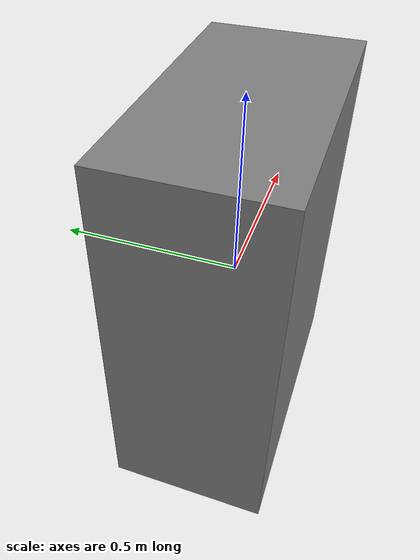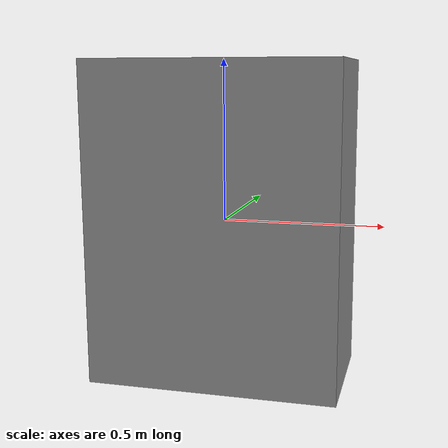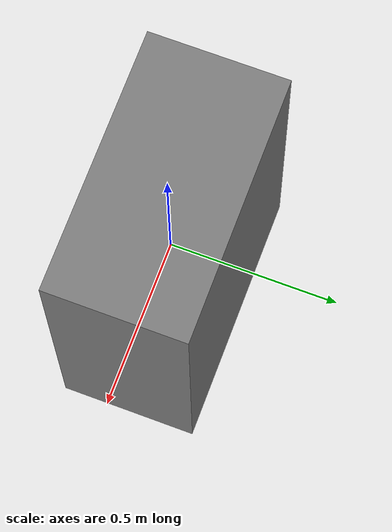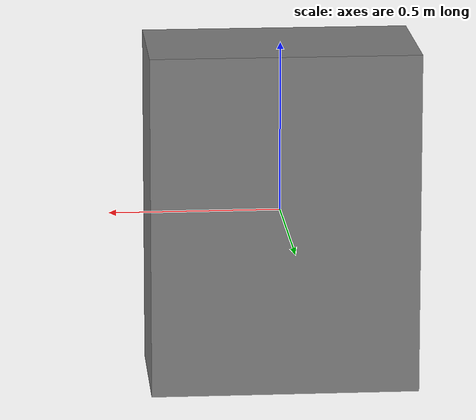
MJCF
<mujoco model="asset">
  <asset>
    <mesh name="assimp_spider_visual" file="assimp_spider.normalized.obj"/>
    <mesh name="assimp_spider_collision" file="assimp_spider.collision_box.obj"/>
  </asset>
  <worldbody><body name="assimp_spider">
    <geom type="mesh" mesh="assimp_spider_visual" contype="0" conaffinity="0" rgba="0.65 0.68 0.72 1"/>
    <geom type="mesh" mesh="assimp_spider_collision" density="1000"/>
  </body></worldbody>
</mujoco>
